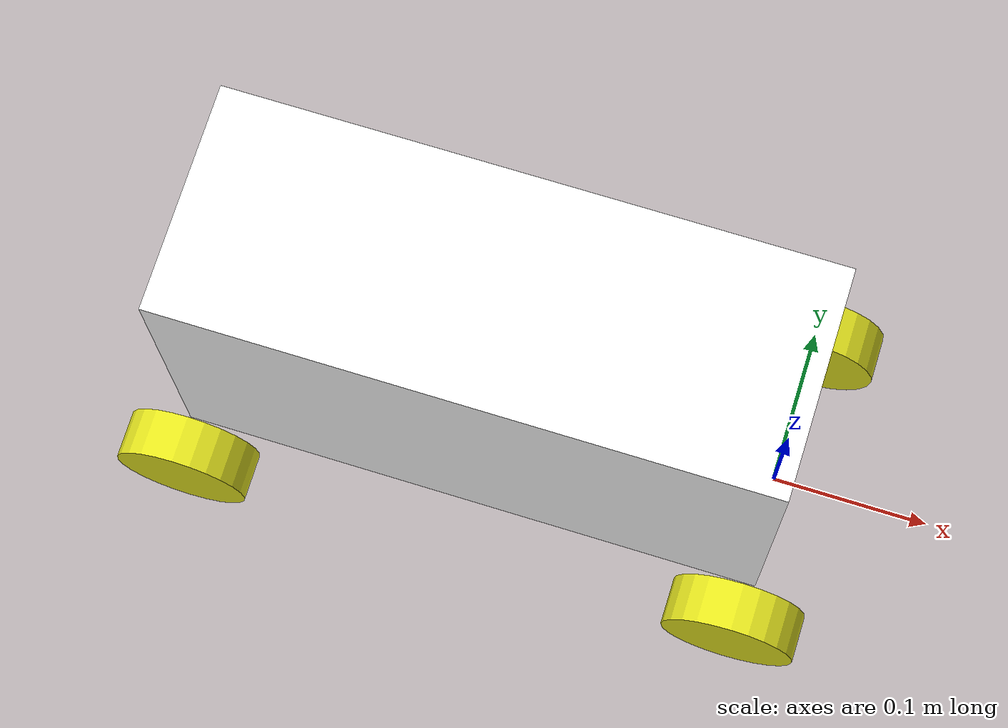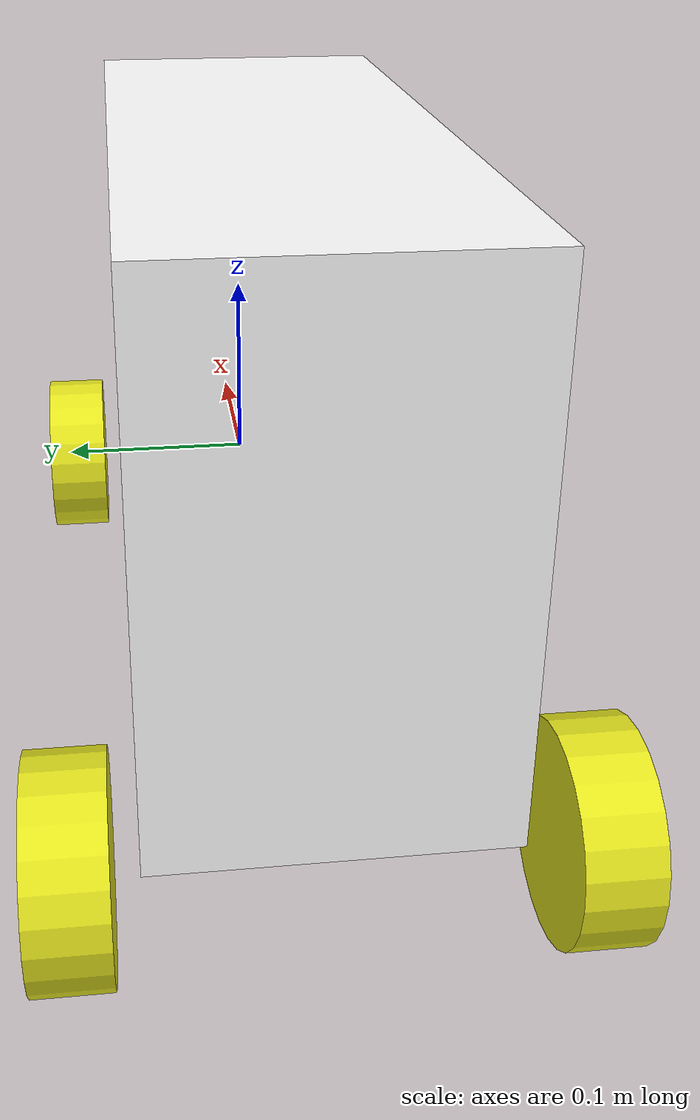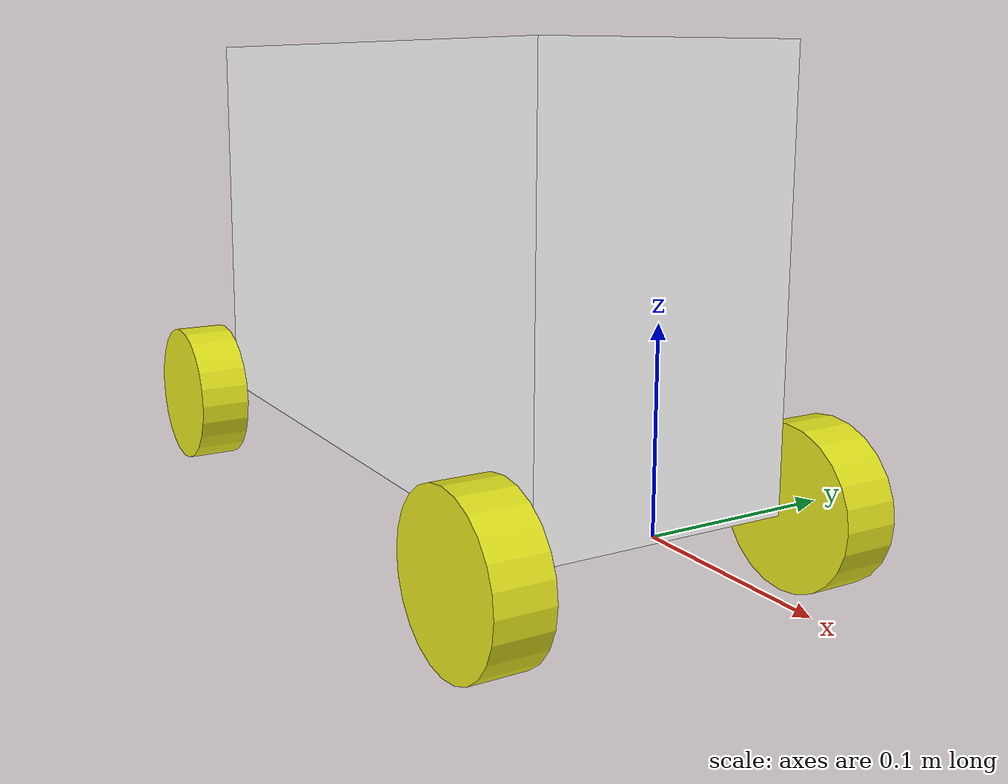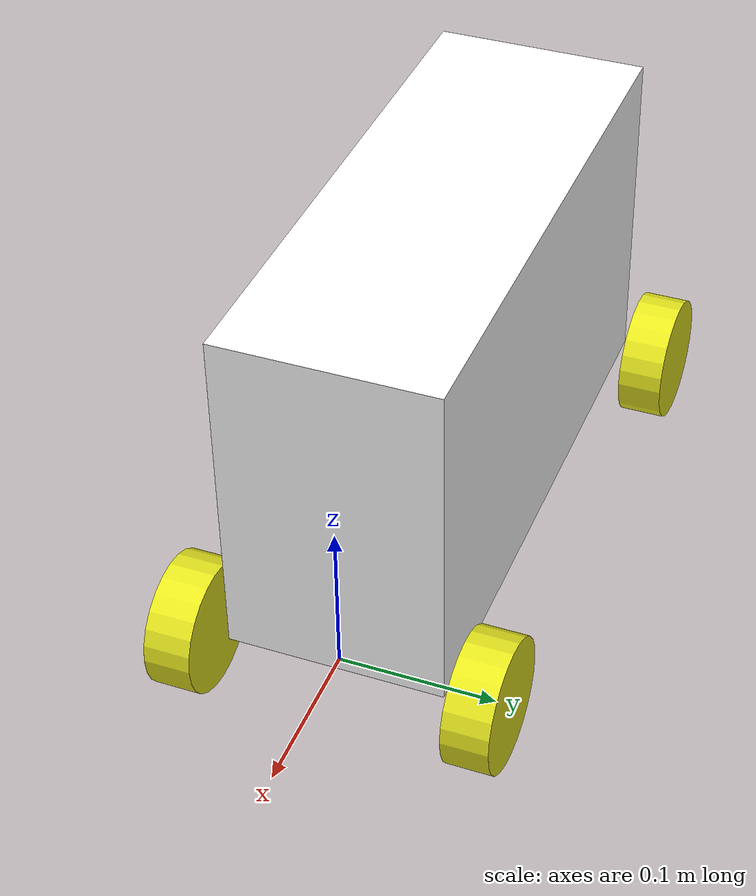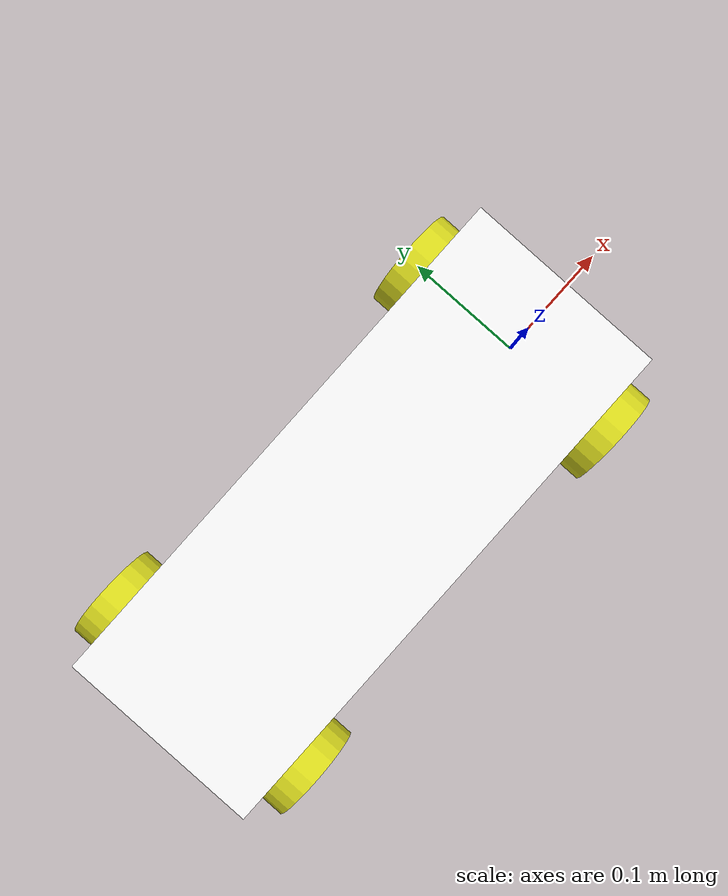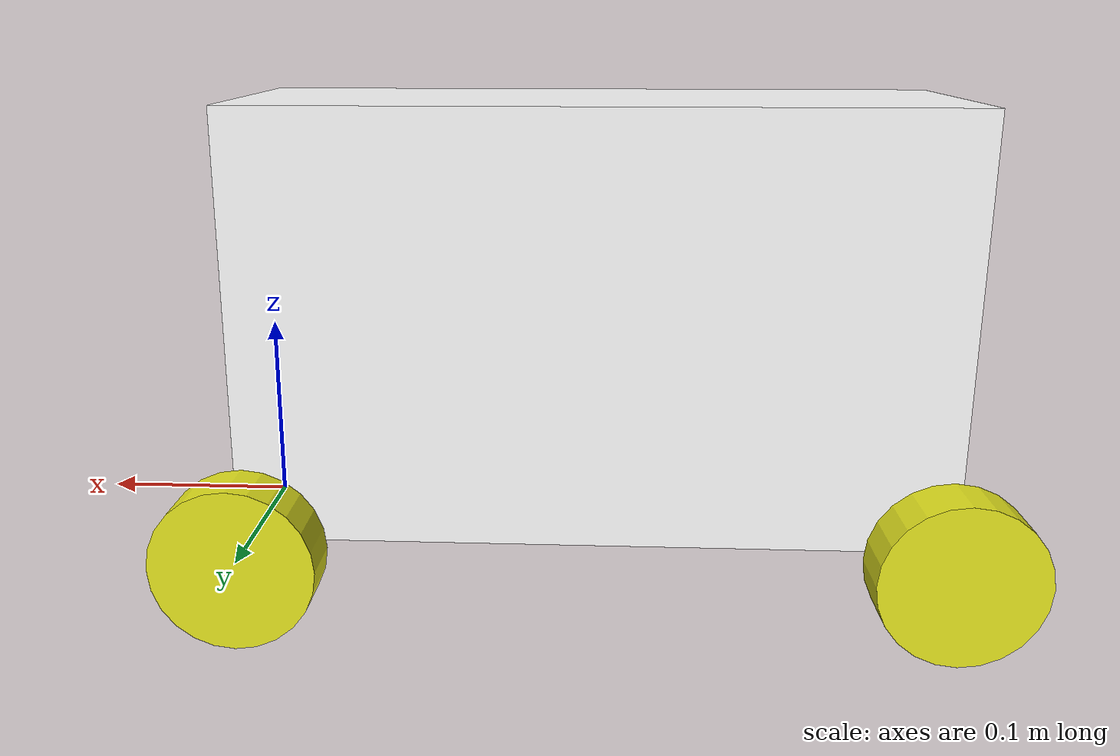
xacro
<?xml version="1.0"?>
<robot xmlns:xacro="http://www.ros.org/wiki/xacro">

    <xacro:include filename="inertial_macros.xacro"/>

<material name="white">
    <color rgba=" 1 1 1 1"/>
</material>

<material name="yellow">
    <color rgba=" 0.9 0.9 0.12 1"/>
</material>

    <link name="base_link">
    </link>

    <!-- CHASSIS -->

    <joint name="chassis_joint" type="fixed">
        <parent link="base_link"/>
        <child link="chassis"/>
        <origin xyz="-0.36 0 0"/>
    </joint>

    <link name="chassis">
        <visual>
            <origin xyz="0.18 0 0.1125" rpy="0 0 0"/>
            <geometry>
                <box size="0.375 0.14 0.225"/>
            </geometry>
            <material name="white"/>
        </visual>
        <collision>
            <origin xyz="0.18 0 0.1125" rpy="0 0 0"/>
            <geometry>
                <box size="0.375 0.14 0.225"/>
            </geometry>
        </collision>
        <xacro:inertial_box mass="2.23" x="0.375" y="0.14" z="0.225">
            <origin xyz="0.18 0 0.1125" rpy="0 0 0"/>
        </xacro:inertial_box>
    </link>

    <!-- WHEELS -->
    <xacro:macro name="front_wheel" params="side y_offset">

        <joint name="${side}_steering_joint" type="revolute">
            <parent link="base_link"/>
            <child link="${side}_steering_link"/>
            <origin xyz="0 ${y_offset} 0" rpy="0 0 0"/>
            <axis xyz="0 0 1"/>
            <limit effort="10" lower="-0.524" upper="0.524" velocity="0.5"/>
            <xacro:if value="${side=='RF'}">
                <mimic joint="LF_steering_joint" multiplier="1" offset="0"/>
            </xacro:if>
        </joint>

        <joint name="${side}_wheel_joint" type="continuous">
            <parent link="${side}_steering_link"/>
            <child link="${side}_wheel"/>
            <origin xyz="0 0 0" rpy="-${pi/2} 0 0"/>
            <axis xyz="0 0 1"/>
            <limit effort="0.05" velocity="10.0"/>
        </joint>

        <link name="${side}_steering_link">
            <inertial>
                <mass value="0.01"/>
                <inertia ixx="0.000001" ixy="0" ixz="0"
                        iyy="0.000001" iyz="0"
                        izz="0.000001"/>
            </inertial>
        </link>

        <link name="${side}_wheel">
            <visual>
                <geometry>
                    <cylinder length="0.03" radius="0.0425"/>
                </geometry>
                <material name="yellow"/>
            </visual>
            <collision>
                <geometry>
                    <sphere radius="0.0425"/>
                </geometry>
            </collision>
            <xacro:inertial_cylinder mass="0.55" length="0.03" radius="0.0425">
                <origin xyz="0 0 0" rpy="0 0 0"/>
            </xacro:inertial_cylinder>
        </link>

    </xacro:macro>

    <xacro:macro name="rear_wheel" params="side y_offset">

        <joint name="${side}_wheel_joint" type="continuous">
            <parent link="base_link"/>
            <child link="${side}_wheel"/>
            <origin xyz="-0.36 ${y_offset} 0" rpy="-${pi/2} 0 0"/>
            <axis xyz="0 0 1"/>
            <limit effort="0.05" velocity="10.0"/>
        </joint>

        <link name="${side}_wheel">
            <visual>
                <geometry>
                    <cylinder length="0.03" radius="0.0425"/>
                </geometry>
                <material name="yellow"/>
            </visual>
            <collision>
                <geometry>
                    <sphere radius="0.0425"/>
                </geometry>
            </collision>
            <xacro:inertial_cylinder mass="0.55" length="0.03" radius="0.0425">
                <origin xyz="0 0 0" rpy="0 0 0"/>
            </xacro:inertial_cylinder>
        </link>

    </xacro:macro>

    <xacro:front_wheel side="LF" y_offset="0.095"/>
    <xacro:front_wheel side="RF" y_offset="-0.095"/>
    <xacro:rear_wheel side="LR" y_offset="0.095"/>
    <xacro:rear_wheel side="RR" y_offset="-0.095"/>

</robot>
